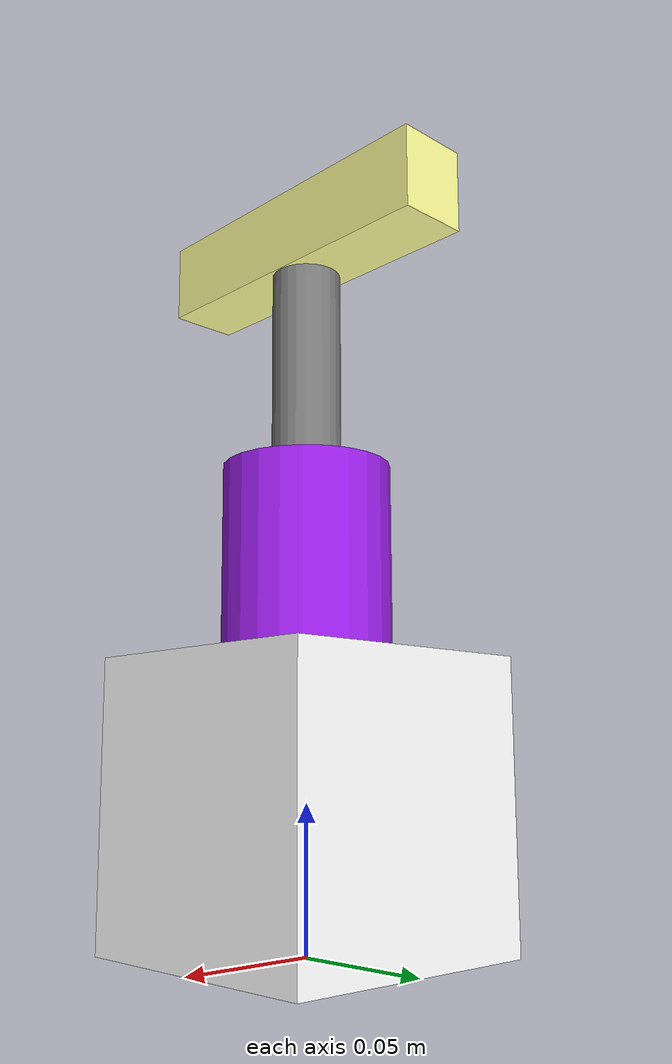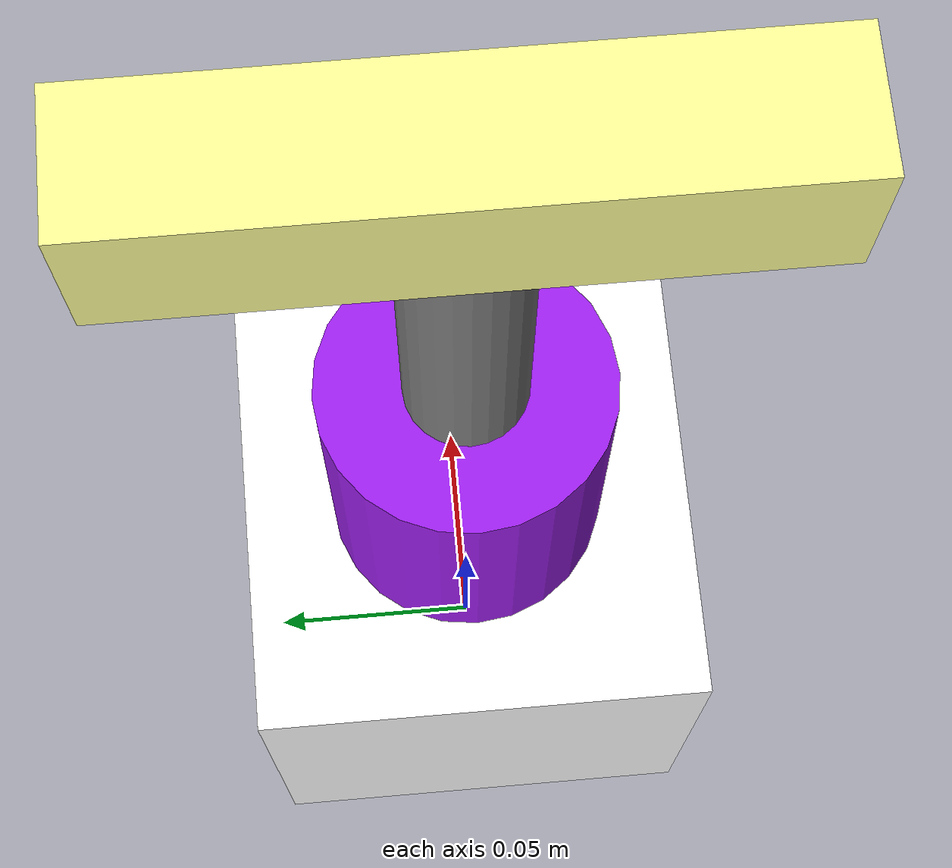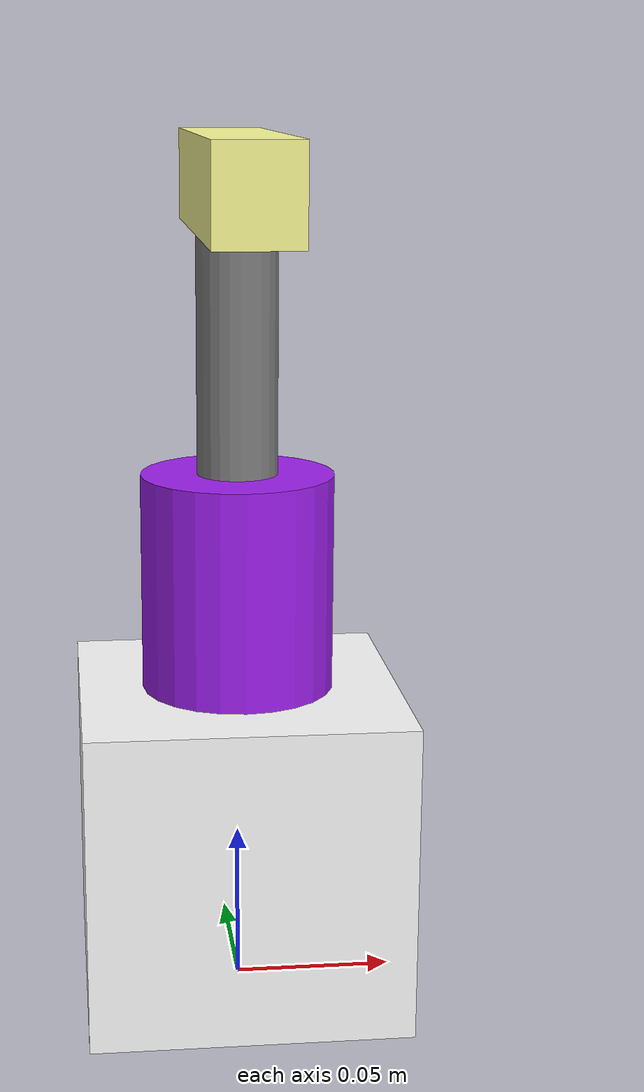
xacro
<?xml version="1.0"?>
<robot xmlns:xacro="http://www.ros.org/wiki/xacro" name="robot">

    <xacro:arg name="use_sim" default="true" />

    <xacro:property name="package_name" value="main_package" />

    <xacro:include filename="$(find ${package_name})/description/shared/inertial_macros.xacro" />
    <xacro:include filename="$(find ${package_name})/description/shared/materials.xacro" />
    <xacro:include filename="$(find ${package_name})/description/shared/properties.xacro" />

    <xacro:include filename="$(find ${package_name})/description/functional/depth_camera.urdf.xacro" />
    <xacro:include filename="$(find ${package_name})/description/functional/lidar.urdf.xacro" />

    <xacro:include filename="$(find ${package_name})/description/robot/robot_core.xacro" />

</robot>

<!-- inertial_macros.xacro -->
<robot xmlns:xacro="http://www.ros.org/wiki/xacro">

    <xacro:macro name="inertial_cylinder" params="mass length radius *origin">
        <inertial>
            <xacro:insert_block name="origin" />
            <mass value="${mass}" />
            <inertia
                ixx="${(1/12) * mass * (3*radius*radius + length*length)}"
                ixy="0.0"
                ixz="0.0"
                iyy="${(1/12) * mass * (3*radius*radius + length*length)}"
                iyz="0.0"
                izz="${(1/2) * mass * (radius*radius)}"
            />
        </inertial>
    </xacro:macro>

    <xacro:macro name="inertial_box" params="mass x y z *origin">
        <inertial>
            <xacro:insert_block name="origin" />
            <mass value="${mass}" />
            <inertia
                ixx="${(1/12) * mass * (y*y + z*z)}"
                ixy="0.0"
                ixz="0.0"
                iyy="${(1/12) * mass * (x*x + z*z)}"
                iyz="0.0"
                izz="${(1/12) * mass * (x*x + y*y)}"
            />
        </inertial>
    </xacro:macro>

    <xacro:macro name="inertial_sphere" params="mass radius *origin">
        <inertial>
            <xacro:insert_block name="origin" />
            <mass value="${mass}" />
            <inertia
                ixx="${(2/5) * mass * (radius*radius)}"
                ixy="0.0"
                ixz="0.0"
                iyy="${(2/5) * mass * (radius*radius)}"
                iyz="0.0"
                izz="${(2/5) * mass * (radius*radius)}"
            />
        </inertial>
    </xacro:macro>

</robot>

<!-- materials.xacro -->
<robot xmlns:xacro="http://www.ros.org/wiki/xacro">

    <material name="black">
        <color rgba="0 0 0 1" />
    </material>

    <material name="grey">
        <color rgba="0.5 0.5 0.5 1" />
    </material>

    <material name="dark_grey">
        <color rgba="0.25 0.25 0.25 1" />
    </material>

    <material name="orange">
        <color rgba="1 0.3 0.1 1" />
    </material>

    <material name="white">
        <color rgba="1 1 1 1" />
    </material>

    <material name="white_transparent">
        <color rgba="1 1 1 0.5" />
    </material>

    <material name="red">
        <color rgba="1 0 0 1" />
    </material>

    <material name="green">
        <color rgba="0.2 1 0.2 1" />
    </material>

    <material name="blue">
        <color rgba="0.2 0.2 1 1" />
    </material>

    <material name="gray">
        <color rgba="0.6 0.6 0.6 1" />
    </material>

    <material name="yellow">
        <color rgba="1 1 0.6 1" />
    </material>

    <material name="purple">
        <color rgba="0.627 0.125 0.941 1" />
    </material>

</robot>

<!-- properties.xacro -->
<robot xmlns:xacro="http://www.ros.org/wiki/xacro">

    <xacro:property name="lidar_radius" value="0.030" />
    <xacro:property name="lidar_length" value="0.068" />

    <xacro:property name="lidar_weight" value="0.400" />

    <xacro:property name="intel_camera_length" value="0.026" />
    <xacro:property name="intel_camera_width" value="0.124" />
    <xacro:property name="intel_camera_height" value="0.029" />

    <xacro:property name="intel_camera_and_fixture_weight" value="0.380" />

    <xacro:property name="intel_camera_fixture_radius" value="0.0125" />
    <xacro:property name="intel_camera_fixture_length" value="0.073" />

</robot>

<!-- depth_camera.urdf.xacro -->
<robot xmlns:xacro="http://www.ros.org/wiki/xacro">

    <xacro:macro name="depth_camera"
        params="nameprefix parent camera_length camera_width camera_height mass fixture_radius fixture_length *origin">

        <joint name="${nameprefix}_fixture_joint" type="fixed">
            <parent link="${parent}" />
            <child link="${nameprefix}_fixture_link" />
            <xacro:insert_block name="origin" />
        </joint>

        <link name="${nameprefix}_fixture_link">
            <visual>
                <geometry>
                    <cylinder radius="${fixture_radius}" length="${fixture_length}" />
                </geometry>
                <material name="grey" />
            </visual>
            <collision>
                <geometry>
                    <cylinder radius="${fixture_radius}" length="${fixture_length}" />
                </geometry>
            </collision>
            <xacro:inertial_cylinder
                mass="${mass}"
                radius="${fixture_radius}" length="${fixture_length}">
                <origin xyz="0 0 0" rpy="0 0 0" />
            </xacro:inertial_cylinder>
        </link>

        <gazebo reference="${nameprefix}_fixture_link">
            <material>Gazebo/Grey</material>
        </gazebo>

        <joint name="${nameprefix}_joint" type="fixed">
            <parent link="${nameprefix}_fixture_link" />
            <child link="${nameprefix}_link" />
            <origin xyz="0 0 ${camera_height/2 + fixture_length/2}" rpy="0 0 0" />
        </joint>

        <link name="${nameprefix}_link">
            <visual>
                <geometry>
                    <box size="${camera_length} ${camera_width} ${camera_height}" />
                </geometry>
                <material name="yellow" />
            </visual>
        </link>

        <joint name="${nameprefix}_optical_joint" type="fixed">
            <parent link="${nameprefix}_link" />
            <child link="${nameprefix}_link_optical" />
            <origin xyz="0 0 0" rpy="${-pi/2} 0 ${-pi/2}" />
        </joint>

        <link name="${nameprefix}_link_optical"></link>

        <gazebo reference="${nameprefix}_link">
            <material>Gazebo/Yellow</material>
            <sensor name="${nameprefix}" type="depth">
                <pose> 0 0 0 0 0 0 </pose>
                <visualize>true</visualize>
                <update_rate>10</update_rate>
                <camera>
                    <horizontal_fov>1.089</horizontal_fov>
                    <image>
                        <format>B8G8R8</format>
                        <width>1280</width>
                        <height>720</height>
                    </image>
                    <clip>
                        <near>0.05</near>
                        <far>8.0</far>
                    </clip>
                </camera>
                <plugin name="${nameprefix}_controller" filename="libgazebo_ros_camera.so">
                    <frame_name>${nameprefix}_link_optical</frame_name>
                    <min_depth>0.1</min_depth>
                    <max_depth>100.0</max_depth>
                </plugin>
            </sensor>
        </gazebo>

    </xacro:macro>

</robot>

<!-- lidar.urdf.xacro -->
<robot xmlns:xacro="http://www.ros.org/wiki/xacro">

    <xacro:macro name="lidar" params="nameprefix parent length radius mass *origin *frame_name">
        <joint name="${nameprefix}_joint" type="fixed">
            <parent link="${parent}" />
            <child link="${nameprefix}_frame" />
            <xacro:insert_block name="origin" />
        </joint>

        <link name="${nameprefix}_frame">
            <visual>
                <geometry>
                    <cylinder length="${length}" radius="${radius}" />
                </geometry>
                <material name="purple" />
            </visual>
            <collision>
                <geometry>
                    <cylinder length="${length}" radius="${radius}" />
                </geometry>
            </collision>
            <xacro:inertial_cylinder
                mass="${mass}"
                length="${length}" radius="${radius}">
                <origin xyz="0 0 0" rpy="0 0 0" />
            </xacro:inertial_cylinder>
        </link>

        <gazebo reference="${nameprefix}_frame">
            <material>Gazebo/Purple</material>
            <sensor name="${nameprefix}" type="ray">
                <pose> 0 0 0 0 0 0 </pose>
                <visualize>false</visualize>
                <update_rate>10</update_rate>
                <ray>
                    <scan>
                        <horizontal>
                            <sample>360</sample>
                            <resolution>1</resolution>
                            <min_angle>-3.14</min_angle>
                            <max_angle>3.14</max_angle>
                        </horizontal>
                    </scan>
                    <range>
                        <min>0.3</min>
                        <max>12</max>
                        <resolution>0.01</resolution>
                    </range>
                </ray>
                <plugin name="${nameprefix}_controller" filename="libgazebo_ros_ray_sensor.so">
                    <ros>

                        <argument>~/out:=scan</argument>
                    </ros>
                    <output_type>sensor_msgs/LaserScan</output_type>

                    <xacro:insert_block name="frame_name" />
                </plugin>
            </sensor>
        </gazebo>
    </xacro:macro>

</robot>

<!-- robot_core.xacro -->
<robot xmlns:xacro="http://www.ros.org/wiki/xacro">

    <link name="base_link"></link>

    <joint name="base_footprint_joint" type="fixed">
        <parent link="base_link" />
        <child link="base_footprint" />
        <origin xyz="0 0 0" rpy="0 0 0" />
    </joint>

    <link name="base_footprint">
    </link>

    <joint name="chassis_joint" type="fixed">
        <parent link="base_link" />
        <child link="chassis" />
        <origin xyz="0 0 0" />
    </joint>

    <link name="chassis">
        <visual>
            <origin xyz="0 0 0.05" />
            <geometry>
                <box size="0.1 0.1 0.1" />
            </geometry>
            <material name="white" />
        </visual>
        <collision>
            <origin xyz="0 0 0" />
            <geometry>
                <box size="0.1 0.1 0.1" />
            </geometry>
        </collision>
        <xacro:inertial_box mass="0.5"
            x="0.1" y="0.1" z="0.1">
            <origin xyz="0 0 0.05" rpy="0 0 0" />
        </xacro:inertial_box>
    </link>

    <gazebo reference="chassis">
        <material>Gazebo/White</material>
    </gazebo>

    <joint name="lidar_joint" type="fixed">
        <parent link="base_link" />
        <child link="lidar_link" />
        <origin
            xyz="0 0 0.1"
            ryp="0 0 0" />
    </joint>

    <link name="lidar_link"></link>

    <xacro:lidar nameprefix="laser"
        parent="lidar_link"
        length="${lidar_length}"
        radius="${lidar_radius}"
        mass="${lidar_weight}">
        <origin xyz="0 0 ${lidar_length/2}" rpy="0 0 0" />
        <frame_name>laser_frame</frame_name>
    </xacro:lidar>

    <joint name="camera_joint" type="fixed">
        <parent link="base_link" />
        <child link="camera_link" />
        <origin
            xyz="0 0 0.168"
            ryp="0 0 0" />
    </joint>

    <link name="camera_link"></link>

    <xacro:depth_camera nameprefix="camera_1"
        parent="camera_link"
        camera_length="${intel_camera_length}"
        camera_width="${intel_camera_width}"
        camera_height="${intel_camera_height}"
        mass="${intel_camera_and_fixture_weight}"
        fixture_radius="${intel_camera_fixture_radius}"
        fixture_length="${intel_camera_fixture_length}">
        <origin xyz="0 0 ${intel_camera_fixture_length/2}" rpy="0 0 0" />
    </xacro:depth_camera>

</robot>
